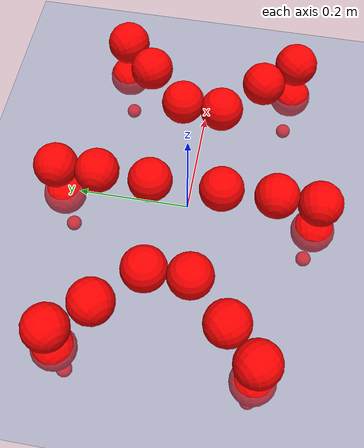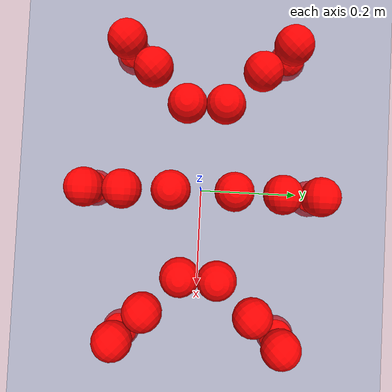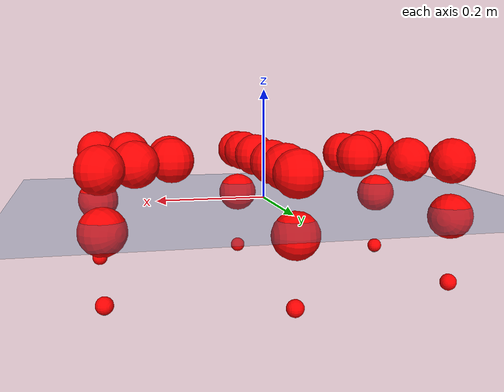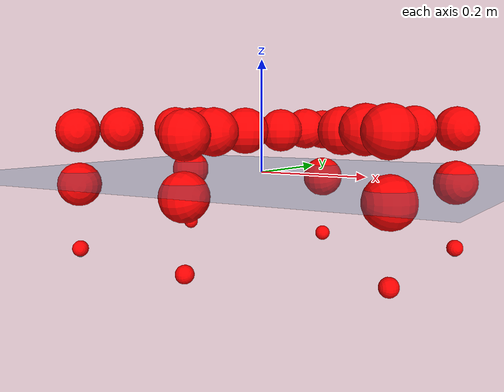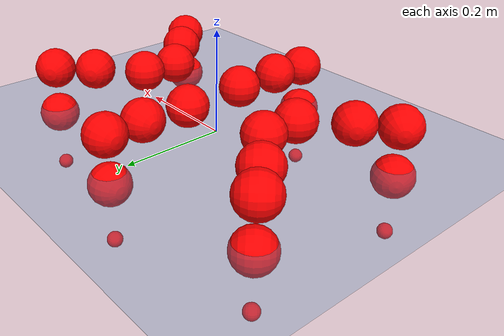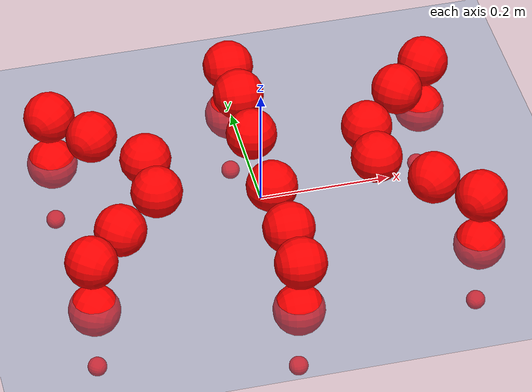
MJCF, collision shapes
<mujoco model="Golem">
  <compiler angle="radian" assetdir="assets" balanceinertia="true" inertiafromgeom="false"/>

  <option timestep="0.005" density="1.2" viscosity="2e-05"/>

  <size nkey="1"/>

  <visual>
    <quality shadowsize="8192"/>
    <map shadowclip="0.5"/>
  </visual>

  <default>
    <default class="/">
      <joint armature="0.01" damping="0.01" frictionloss="0.01"/>
      <geom contype="0" conaffinity="0" group="1" solref="-1000 -80"/>
      <site size="0.01 0.005 0.005" group="5"/>
      <general forcelimited="true" biastype="affine" gainprm="25" biasprm="0 -25 -0.5"/>
      <default class="visual">
        <geom type="mesh" group="2"/>
      </default>
      <default class="collision">
        <geom group="3"/>
      </default>
      <default class="foot">
        <geom size="0.01 0 0" condim="6" group="4" priority="1" solimp="0.015 1 0.01"/>
      </default>
      <default class="reward_collision_sphere">
        <geom group="5" rgba="1 0 0 1"/>
      </default>
    </default>
  </default>

  <asset>
    <texture type="skybox" colorspace="auto" name="//unnamed_texture_0" builtin="gradient" rgb1="0.95 0.95 0.95" rgb2="0.95 0.95 0.95" width="100" height="600"/>
    <texture type="2d" colorspace="auto" name="texplane" builtin="checker" rgb1="0.345 0.575 0.748" rgb2="0.345 0.575 0.748" markrgb="1 1 1" width="512" height="512"/>
    <material name="MatPlane" class="/" texture="texplane" texuniform="true" texrepeat="2 2" specular="0.9"/>
    <mesh name="body" class="/" file="body.stl" scale="0.001 0.001 0.001"/>
    <mesh name="coxa" class="/" file="coxa.stl" scale="0.001 0.001 0.001"/>
    <mesh name="femur" class="/" file="femur.stl" scale="0.001 0.001 0.001"/>
    <mesh name="tibia" class="/" file="tibia.stl" scale="0.001 0.001 0.001"/>
    <mesh name="tarsus" class="/" file="tarsus.stl" scale="0.001 0.001 0.001"/>
  </asset>

  <worldbody>
    <geom name="floor" class="/" size="100 100 0.125" type="plane" group="0" material="MatPlane"/>
    <light name="toplight_shadow" class="/" pos="0 0 5" dir="0.0990148 0.0990148 -0.990148" type="directional" ambient="0.04 0.04 0.04" diffuse="0.55 0.55 0.55" specular="0.12 0.12 0.12"/>
    <light name="toplight_fill" class="/" pos="0 0 5" dir="0.0990148 0.0990148 -0.990148" type="directional" castshadow="false" ambient="0.04 0.04 0.04" diffuse="0.3 0.3 0.3" specular="0.08 0.08 0.08"/>
    <body name="trunk" pos="0.00220061 0.00188938 0.00283381" quat="1 7.25362e-05 -0.000198669 -0.000150313">
      <inertial pos="-0.00185616 -0.00116379 -0.00234519" quat="0.999988 -0.00271676 -0.00312426 0.00275778" mass="3.79256" diaginertia="0.0156773 0.00206094 0.0198005"/>
      <joint name="//unnamed_joint_0" type="free"/>
      <geom name="//unnamed_geom_1" class="/" pos="0 0 0.0731502" quat="1 0 0 0" type="mesh" rgba="0.9 0.9 0.9 1" mesh="body"/>
      <site name="imu" class="/" pos="0.145967 -0.0141526 0.118155" size="0.0098839"/>
      <camera name="track" class="/" pos="0 -1.45296 0" quat="0.707107 0.707107 0 0" mode="trackcom"/>
      <camera name="ego_camera" class="/" pos="0.142443 0 0.114297" quat="-0.5 -0.5 0.5 0.5"/>
      <body name="coxa_RR" pos="-0.193585 -0.0591785 0.0744911" quat="0.38283 -0.000999325 0.000175932 -0.923818">
        <inertial pos="-0.000539418 -0.00117275 0.00159624" quat="0.999907 0.000909527 0.0129932 0.00416335" mass="0.200055" diaginertia="0.015885 0.00197868 0.0195737"/>
        <joint name="coxa_joint_RR" class="/" pos="0 0 0" axis="-0.000377262 -9.16754e-05 -1" stiffness="0.0085078" range="-3.08629 3.13769" armature="0.00994412" damping="0.00426704" frictionloss="0.0100355"/>
        <geom name="//unnamed_geom_2" class="/" type="mesh" rgba="0.2 0.2 0.2 1" mesh="coxa"/>
        <geom name="//unnamed_geom_3" class="reward_collision_sphere" size="0.0395356" pos="-0.0328715 0 0"/>
        <body name="femur_RR" pos="0.0659217 0.000566678 -0.000663137" quat="0.499664 -0.50016 0.499492 0.500683">
          <inertial pos="-0.00264489 -0.000110199 -0.000871128" quat="1 -0.000934295 0.000241527 -6.27565e-05" mass="0.196366" diaginertia="0.0160707 0.00206253 0.0198733"/>
          <joint name="femur_joint_RR" class="/" pos="0 0 0" axis="-0.0057703 -0.00179238 -0.999982" stiffness="0.00646537" range="-3.19622 3.19575" armature="0.00843419" damping="0" frictionloss="0.0100427"/>
          <geom name="//unnamed_geom_4" class="/" type="mesh" rgba="0.9 0.9 0.9 1" mesh="femur"/>
          <geom name="//unnamed_geom_5" class="reward_collision_sphere" size="0.0395356"/>
          <body name="tibia_RR" pos="0.00284865 -0.0774708 -3.67526e-05" quat="-0.000143359 1 6.17617e-05 0.000272509">
            <inertial pos="0.00259081 -0.000590156 0.000757305" quat="0.999903 0.0131336 0.00453332 0.00125819" mass="0.193266" diaginertia="0.0164424 0.00216052 0.0204166"/>
            <joint name="tibia_joint_RR" class="/" pos="0 0 0" axis="0.0119247 0.00761345 0.9999" range="-3.19231 3.12934" armature="0.00979556" damping="0.0223336" frictionloss="0.00979079"/>
            <geom name="//unnamed_geom_6" class="/" type="mesh" rgba="0.2 0.2 0.2 1" mesh="tibia"/>
            <geom name="//unnamed_geom_7" class="reward_collision_sphere" size="0.0395356"/>
            <body name="tarsus_RR" pos="0.0975126 -0.00155103 -0.000335096" quat="1 0.00013292 -0.00037024 0.000139706">
              <inertial pos="0.069378 0.000775189 -0.00240829" quat="0.489101 0.502257 0.501518 0.50695" mass="0.197811" diaginertia="0.0155572 0.00212899 0.0199093"/>
              <joint name="tarsus_joint_RR" class="/" pos="0 0 0" axis="0.00417526 0.00516822 0.999978" range="-3.11251 3.14864" armature="0.0108875" damping="0.0417427" frictionloss="0.0112359"/>
              <geom name="//unnamed_geom_8" class="/" type="mesh" rgba="0.9 0.9 0.9 1" mesh="tarsus"/>
              <geom name="foot_1" class="foot" size="0.0106709" pos="0.12272 0 0" quat="0 -0.707107 0 0.707107"/>
              <geom name="//unnamed_geom_10" class="reward_collision_sphere" size="0.0395356"/>
              <geom name="//unnamed_geom_11" class="reward_collision_sphere" size="0.0148258" pos="0.117789 0 0"/>
              <site name="foot_1" class="foot" pos="0.12272 0 0" quat="0 -0.707107 0 0.707107" size="0.0098839"/>
            </body>
          </body>
        </body>
      </body>
      <body name="coxa_RM" pos="0.000677197 -0.093821 0.0723413" quat="0.70714 7.23817e-06 -0.000338512 -0.707073">
        <inertial pos="0.000418118 0.00281571 0.00192686" quat="0.999991 0.00301621 9.57044e-05 0.00283554" mass="0.188953" diaginertia="0.0160213 0.00207648 0.0198326"/>
        <joint name="coxa_joint_RM" class="/" pos="0 0 0" axis="-0.00319742 -0.00765924 -0.999966" range="-3.15022 3.11047" armature="0.00999022" damping="0.0209674" frictionloss="0.00950031"/>
        <geom name="//unnamed_geom_12" class="/" type="mesh" rgba="0.2 0.2 0.2 1" mesh="coxa"/>
        <geom name="//unnamed_geom_13" class="reward_collision_sphere" size="0.0395356" pos="-0.0328715 0 0"/>
        <body name="femur_RM" pos="0.0630583 0.0024296 -2.42898e-05" quat="0.499983 -0.500015 0.499985 0.500016">
          <inertial pos="-0.00057368 -0.00299808 0.00264725" quat="0.99999 -0.00282144 -0.000283201 -0.00350075" mass="0.197497" diaginertia="0.015586 0.0019976 0.0195845"/>
          <joint name="femur_joint_RM" class="/" pos="0 0 0" axis="0.00402527 0.00160636 -0.999991" range="-3.12035 3.08453" armature="0.010287" damping="0" frictionloss="0.0103374"/>
          <geom name="//unnamed_geom_14" class="/" type="mesh" rgba="0.9 0.9 0.9 1" mesh="femur"/>
          <geom name="//unnamed_geom_15" class="reward_collision_sphere" size="0.0395356"/>
          <body name="tibia_RM" pos="0.00317161 -0.0749319 -0.000509787" quat="-3.72949e-06 1 -2.05117e-05 -7.54883e-06">
            <inertial pos="-0.00119065 -0.00162641 0.00205451" quat="0.999985 -0.00163898 0.00332569 0.00410873" mass="0.19169" diaginertia="0.0158762 0.00201426 0.0190817"/>
            <joint name="tibia_joint_RM" class="/" pos="0 0 0" axis="-0.000472206 0.00093433 0.999999" range="-3.16085 3.19258" armature="0.0112984" damping="0.0170584" frictionloss="0.0112788"/>
            <geom name="//unnamed_geom_16" class="/" type="mesh" rgba="0.2 0.2 0.2 1" mesh="tibia"/>
            <geom name="//unnamed_geom_17" class="reward_collision_sphere" size="0.0395356"/>
            <body name="tarsus_RM" pos="0.0935369 -0.000418973 0.00186809" quat="1 0.000186788 0.000460147 5.83556e-05">
              <inertial pos="0.0669759 -0.000639071 0.00020007" quat="0.497836 0.497913 0.502542 0.501691" mass="0.200297" diaginertia="0.0168186 0.00209409 0.0201395"/>
              <joint name="tarsus_joint_RM" class="/" pos="0 0 0" axis="-0.00339057 -0.00111086 0.999994" range="-3.13912 3.15621" armature="0.00887055" damping="0.0129768" frictionloss="0.00953364"/>
              <geom name="//unnamed_geom_18" class="/" type="mesh" rgba="0.9 0.9 0.9 1" mesh="tarsus"/>
              <geom name="foot_2" class="foot" size="0.00899458" pos="0.12272 0 0" quat="0 -0.707107 0 0.707107"/>
              <geom name="//unnamed_geom_20" class="reward_collision_sphere" size="0.0395356"/>
              <geom name="//unnamed_geom_21" class="reward_collision_sphere" size="0.0148258" pos="0.117789 0 0"/>
              <site name="foot_2" class="foot" pos="0.12272 0 0" quat="0 -0.707107 0 0.707107" size="0.0098839"/>
            </body>
          </body>
        </body>
      </body>
      <body name="coxa_RF" pos="0.193312 -0.0586015 0.0738747" quat="0.923908 0.000284686 -0.000188001 -0.382615">
        <inertial pos="0.00232291 8.30611e-05 -0.000325623" quat="0.999997 -0.00177851 0.000791585 -0.00141526" mass="0.19471" diaginertia="0.0161834 0.00204967 0.0191396"/>
        <joint name="coxa_joint_RF" class="/" pos="0 0 0" axis="-0.0066037 0.00109473 -0.999978" range="-3.19599 3.15236" armature="0.00845795" damping="0.015936" frictionloss="0.0103438"/>
        <geom name="//unnamed_geom_22" class="/" type="mesh" rgba="0.2 0.2 0.2 1" mesh="coxa"/>
        <geom name="//unnamed_geom_23" class="reward_collision_sphere" size="0.0395356" pos="-0.0328715 0 0"/>
        <body name="femur_RF" pos="0.0657547 0.000339705 0.0037004" quat="0.500018 -0.499678 0.499589 0.500714">
          <inertial pos="0.00135849 -0.000447355 -0.00247102" quat="0.999976 -0.00316049 -0.00476949 -0.00381218" mass="0.187659" diaginertia="0.0154092 0.00205695 0.0197551"/>
          <joint name="femur_joint_RF" class="/" pos="0 0 0" axis="0.00153607 -0.000360757 -0.999999" range="-3.09644 3.13339" armature="0.0112357" damping="0" frictionloss="0.0109024"/>
          <geom name="//unnamed_geom_24" class="/" type="mesh" rgba="0.9 0.9 0.9 1" mesh="femur"/>
          <geom name="//unnamed_geom_25" class="reward_collision_sphere" size="0.0395356"/>
          <body name="tibia_RF" pos="0.000956278 -0.0799769 0.00179504" quat="-8.04928e-05 1 -8.08532e-05 0.000139062">
            <inertial pos="0.0018687 0.00294948 -0.00125219" quat="0.999975 0.00645454 0.00281893 0.000825722" mass="0.195222" diaginertia="0.0160179 0.00196245 0.0202337"/>
            <joint name="tibia_joint_RF" class="/" pos="0 0 0" axis="-0.00176818 0.00147575 0.999997" range="-3.15703 3.12667" armature="0.01096" damping="0.000388924" frictionloss="0.00865816"/>
            <geom name="//unnamed_geom_26" class="/" type="mesh" rgba="0.2 0.2 0.2 1" mesh="tibia"/>
            <geom name="//unnamed_geom_27" class="reward_collision_sphere" size="0.0395356"/>
            <body name="tarsus_RF" pos="0.0975467 0.000919556 -0.000832395" quat="1 -0.000480155 -0.000610685 2.41998e-05">
              <inertial pos="0.0647588 -0.00144496 -0.000836817" quat="0.498906 0.499596 0.498313 0.503171" mass="0.18949" diaginertia="0.0163497 0.00202695 0.0198044"/>
              <joint name="tarsus_joint_RF" class="/" pos="0 0 0" axis="0.00566668 -0.0111933 0.999921" stiffness="0.0121289" range="-3.11037 3.15452" armature="0.0100042" damping="0.00191233" frictionloss="0.0100399"/>
              <geom name="//unnamed_geom_28" class="/" type="mesh" rgba="0.9 0.9 0.9 1" mesh="tarsus"/>
              <geom name="foot_3" class="foot" size="0.00916863" pos="0.12272 0 0" quat="0 -0.707107 0 0.707107"/>
              <geom name="//unnamed_geom_30" class="reward_collision_sphere" size="0.0395356"/>
              <geom name="//unnamed_geom_31" class="reward_collision_sphere" size="0.0148258" pos="0.117789 0 0"/>
              <site name="foot_3" class="foot" pos="0.12272 0 0" quat="0 -0.707107 0 0.707107" size="0.0098839"/>
            </body>
          </body>
        </body>
      </body>
      <body name="coxa_LR" pos="-0.194976 0.063092 0.0755235" quat="0.382003 0.000894789 -8.16639e-05 0.924161">
        <inertial pos="-0.00138489 -0.00130233 0.00254184" quat="0.999921 0.00567414 -0.0112074 0.00028821" mass="0.192045" diaginertia="0.0155137 0.00203172 0.0190336"/>
        <joint name="coxa_joint_LR" class="/" pos="0 0 0" axis="-0.00143891 -0.0154505 -0.99988" range="-3.18895 3.16712" armature="0.00899225" damping="0.0148629" frictionloss="0.0099897"/>
        <geom name="//unnamed_geom_32" class="/" type="mesh" rgba="0.2 0.2 0.2 1" mesh="coxa"/>
        <geom name="//unnamed_geom_33" class="reward_collision_sphere" size="0.0395356" pos="-0.0328715 0 0"/>
        <body name="femur_LR" pos="0.0664108 -0.00134428 -0.00182734" quat="0.499197 -0.500769 0.499389 0.500643">
          <inertial pos="0.00188714 0.000512975 0.000555357" quat="0.999973 -0.00403043 -0.0058887 0.00170559" mass="0.18662" diaginertia="0.0156149 0.0020222 0.0196968"/>
          <joint name="femur_joint_LR" class="/" pos="0 0 0" axis="-0.0105621 -0.0101687 0.999893" range="-3.1234 3.08855" armature="0.0111413" damping="0" frictionloss="0.0102187"/>
          <geom name="//unnamed_geom_34" class="/" type="mesh" rgba="0.9 0.9 0.9 1" mesh="femur"/>
          <geom name="//unnamed_geom_35" class="reward_collision_sphere" size="0.0395356"/>
          <body name="tibia_LR" pos="-0.00169571 -0.0798957 -0.00321621" quat="0.00134971 0.999999 0.000448351 -7.83574e-05">
            <inertial pos="0.000945408 -0.000940262 0.00267262" quat="0.9999 0.00921805 -0.000986138 0.0106904" mass="0.191097" diaginertia="0.0162154 0.00207064 0.0194385"/>
            <joint name="tibia_joint_LR" class="/" pos="0 0 0" axis="-8.31626e-05 -0.000359864 -1" range="-3.19026 3.19383" armature="0.0086117" damping="0.0126966" frictionloss="0.0112874"/>
            <geom name="//unnamed_geom_36" class="/" type="mesh" rgba="0.2 0.2 0.2 1" mesh="tibia"/>
            <geom name="//unnamed_geom_37" class="reward_collision_sphere" size="0.0395356"/>
            <body name="tarsus_LR" pos="0.096547 0.000933566 0.00249954" quat="0.999999 3.55436e-06 -0.000658636 0.000868274">
              <inertial pos="0.0676935 0.00066669 0.000635298" quat="0.495168 0.511643 0.499411 0.493577" mass="0.199407" diaginertia="0.0164003 0.00211406 0.0203878"/>
              <joint name="tarsus_joint_LR" class="/" pos="0 0 0" axis="-0.00250186 -0.00563696 -0.999981" range="-3.18184 3.13689" armature="0.00988431" damping="0.029744" frictionloss="0.00892811"/>
              <geom name="//unnamed_geom_38" class="/" type="mesh" rgba="0.9 0.9 0.9 1" mesh="tarsus"/>
              <geom name="foot_4" class="foot" size="0.00997633" pos="0.12272 0 0" quat="0.707107 0 -0.707107 0"/>
              <geom name="//unnamed_geom_40" class="reward_collision_sphere" size="0.0395356"/>
              <geom name="//unnamed_geom_41" class="reward_collision_sphere" size="0.0148258" pos="0.117789 0 0"/>
              <site name="foot_4" class="foot" pos="0.12272 0 0" quat="0.707107 0 -0.707107 0" size="0.0098839"/>
            </body>
          </body>
        </body>
      </body>
      <body name="coxa_LM" pos="-0.00101964 0.0973352 0.0704682" quat="0.707234 -0.00122568 -0.000373604 0.706979">
        <inertial pos="-0.00191274 -0.001534 -0.00261806" quat="0.999997 0.00140916 -0.000752485 -0.00210205" mass="0.189267" diaginertia="0.0151744 0.00196777 0.019724"/>
        <joint name="coxa_joint_LM" class="/" pos="0 0 0" axis="-0.00010995 0.00182869 -0.999998" range="-3.13959 3.12926" armature="0.0106529" damping="0.00785929" frictionloss="0.0084851"/>
        <geom name="//unnamed_geom_42" class="/" type="mesh" rgba="0.2 0.2 0.2 1" mesh="coxa"/>
        <geom name="//unnamed_geom_43" class="reward_collision_sphere" size="0.0395356" pos="-0.0328715 0 0"/>
        <body name="femur_LM" pos="0.0622716 -0.00154449 0.00177622" quat="0.500247 -0.5001 0.500004 0.499649">
          <inertial pos="0.00271853 0.00246142 0.00181306" quat="0.999999 -0.000457483 -0.000843036 -0.00108391" mass="0.192634" diaginertia="0.016294 0.00201118 0.0189565"/>
          <joint name="femur_joint_LM" class="/" pos="0 0 0" axis="0.00649655 -0.00214377 0.999977" stiffness="0.00418676" range="-3.15238 3.08703" armature="0.011257" damping="0" frictionloss="0.0112731"/>
          <geom name="//unnamed_geom_44" class="/" type="mesh" rgba="0.9 0.9 0.9 1" mesh="femur"/>
          <geom name="//unnamed_geom_45" class="reward_collision_sphere" size="0.0395356"/>
          <body name="tibia_LM" pos="0.00287019 -0.0748645 -0.000688543" quat="-0.000179534 1 0.000436052 0.000282774">
            <inertial pos="-0.00253426 -0.0014175 0.000874986" quat="0.999993 -0.00102696 0.00347204 -0.000696952" mass="0.192743" diaginertia="0.0156511 0.00202755 0.0188247"/>
            <joint name="tibia_joint_LM" class="/" pos="0 0 0" axis="0.00980634 -0.00747782 -0.999924" range="-3.13043 3.1005" armature="0.0108122" damping="0" frictionloss="0.00962099"/>
            <geom name="//unnamed_geom_46" class="/" type="mesh" rgba="0.2 0.2 0.2 1" mesh="tibia"/>
            <geom name="//unnamed_geom_47" class="reward_collision_sphere" size="0.0395356"/>
            <body name="tarsus_LM" pos="0.0980476 -0.00220087 0.00162393" quat="1 0.000275801 -2.89546e-05 -0.00083345">
              <inertial pos="0.0625369 -0.000226655 -0.00233783" quat="0.495749 0.498287 0.501379 0.504541" mass="0.193203" diaginertia="0.0154398 0.00190629 0.0182891"/>
              <joint name="tarsus_joint_LM" class="/" pos="0 0 0" axis="0.00127559 -0.00914887 -0.999957" stiffness="0.00439169" range="-3.11851 3.09793" armature="0.00872624" damping="0.0229913" frictionloss="0.00981773"/>
              <geom name="//unnamed_geom_48" class="/" type="mesh" rgba="0.9 0.9 0.9 1" mesh="tarsus"/>
              <geom name="foot_5" class="foot" size="0.00995994" pos="0.12272 0 0" quat="0.707107 0 -0.707107 0"/>
              <geom name="//unnamed_geom_50" class="reward_collision_sphere" size="0.0395356"/>
              <geom name="//unnamed_geom_51" class="reward_collision_sphere" size="0.0148258" pos="0.117789 0 0"/>
              <site name="foot_5" class="foot" pos="0.12272 0 0" quat="0.707107 0 -0.707107 0" size="0.0098839"/>
            </body>
          </body>
        </body>
      </body>
      <body name="coxa_LF" pos="0.196938 0.0602113 0.0743811" quat="0.924088 0.000397672 -0.000454819 0.382178">
        <inertial pos="0.00165468 -0.000782019 0.00216995" quat="0.999993 -0.00312607 -0.00207043 0.000740649" mass="0.195956" diaginertia="0.0152489 0.00206067 0.0192122"/>
        <joint name="coxa_joint_LF" class="/" pos="0 0 0" axis="0.0156316 -0.00833659 -0.999843" stiffness="0.00927132" range="-3.13821 3.14037" armature="0.009239" damping="0.00669378" frictionloss="0.00992304"/>
        <geom name="//unnamed_geom_52" class="/" type="mesh" rgba="0.2 0.2 0.2 1" mesh="coxa"/>
        <geom name="//unnamed_geom_53" class="reward_collision_sphere" size="0.0395356" pos="-0.0328715 0 0"/>
        <body name="femur_LF" pos="0.0662313 0.00345731 0.00182691" quat="0.499926 -0.500018 0.499992 0.500065">
          <inertial pos="0.00209156 -0.00217239 0.00141674" quat="0.999955 0.00320731 0.00864129 0.00245185" mass="0.187085" diaginertia="0.0155437 0.00202625 0.0194023"/>
          <joint name="femur_joint_LF" class="/" pos="0 0 0" axis="0.000339576 0.0120657 0.999927" range="-3.15026 3.15202" armature="0.0113926" damping="0.00917383" frictionloss="0.00939146"/>
          <geom name="//unnamed_geom_54" class="/" type="mesh" rgba="0.9 0.9 0.9 1" mesh="femur"/>
          <geom name="//unnamed_geom_55" class="reward_collision_sphere" size="0.0395356"/>
          <body name="tibia_LF" pos="0.00139996 -0.0815719 -0.000415906" quat="0.00138536 0.999999 0.00045883 9.84577e-05">
            <inertial pos="-7.57462e-05 0.00141439 -0.000494898" quat="0.999999 0.00136572 -0.000578573 -0.000820936" mass="0.19267" diaginertia="0.0159968 0.00200504 0.0195611"/>
            <joint name="tibia_joint_LF" class="/" pos="0 0 0" axis="0.0109729 -0.000404587 -0.99994" range="-3.18305 3.19479" armature="0.0090585" damping="0.00971651" frictionloss="0.0106626"/>
            <geom name="//unnamed_geom_56" class="/" type="mesh" rgba="0.2 0.2 0.2 1" mesh="tibia"/>
            <geom name="//unnamed_geom_57" class="reward_collision_sphere" size="0.0395356"/>
            <body name="tarsus_LF" pos="0.0965046 0.000873784 -0.00353836" quat="0.999999 0.000443134 -0.000721072 0.000858273">
              <inertial pos="0.0636741 0.00272904 0.00014801" quat="0.499567 0.498316 0.501661 0.50045" mass="0.186766" diaginertia="0.0152269 0.00194794 0.0195005"/>
              <joint name="tarsus_joint_LF" class="/" pos="0 0 0" axis="0.0155292 -0.00305019 -0.999875" stiffness="0.0285543" range="-3.17355 3.16884" armature="0.010079" damping="0.000163437" frictionloss="0.0104009"/>
              <geom name="//unnamed_geom_58" class="/" type="mesh" rgba="0.9 0.9 0.9 1" mesh="tarsus"/>
              <geom name="foot_6" class="foot" size="0.0104775" pos="0.12272 0 0" quat="0.707107 0 -0.707107 0"/>
              <geom name="//unnamed_geom_60" class="reward_collision_sphere" size="0.0395356"/>
              <geom name="//unnamed_geom_61" class="reward_collision_sphere" size="0.0148258" pos="0.117789 0 0"/>
              <site name="foot_6" class="foot" pos="0.12272 0 0" quat="0.707107 0 -0.707107 0" size="0.0098839"/>
            </body>
          </body>
        </body>
      </body>
    </body>
  </worldbody>

  <contact>
    <pair class="/" geom1="floor" geom2="foot_1" name="//unnamed_contact_0"/>
    <pair class="/" geom1="floor" geom2="foot_2" name="//unnamed_contact_1"/>
    <pair class="/" geom1="floor" geom2="foot_3" name="//unnamed_contact_2"/>
    <pair class="/" geom1="floor" geom2="foot_4" name="//unnamed_contact_3"/>
    <pair class="/" geom1="floor" geom2="foot_5" name="//unnamed_contact_4"/>
    <pair class="/" geom1="floor" geom2="foot_6" name="//unnamed_contact_5"/>
  </contact>

  <actuator>
    <general name="coxa_joint_RR" class="/" joint="coxa_joint_RR" forcerange="-7.85735 7.85735" gainprm="24.2952" biasprm="0 -24.2952 -0.541169"/>
    <general name="femur_joint_RR" class="/" joint="femur_joint_RR" forcerange="-6.48566 6.48566" gainprm="24.2952" biasprm="0 -24.2952 -0.541169"/>
    <general name="tibia_joint_RR" class="/" joint="tibia_joint_RR" forcerange="-6.87425 6.87425" gainprm="24.2952" biasprm="0 -24.2952 -0.541169"/>
    <general name="tarsus_joint_RR" class="/" joint="tarsus_joint_RR" forcerange="-6.44993 6.44993" gainprm="24.2952" biasprm="0 -24.2952 -0.541169"/>
    <general name="coxa_joint_RM" class="/" joint="coxa_joint_RM" forcerange="-7.25387 7.25387" gainprm="24.2952" biasprm="0 -24.2952 -0.541169"/>
    <general name="femur_joint_RM" class="/" joint="femur_joint_RM" forcerange="-6.94348 6.94348" gainprm="24.2952" biasprm="0 -24.2952 -0.541169"/>
    <general name="tibia_joint_RM" class="/" joint="tibia_joint_RM" forcerange="-7.01297 7.01297" gainprm="24.2952" biasprm="0 -24.2952 -0.541169"/>
    <general name="tarsus_joint_RM" class="/" joint="tarsus_joint_RM" forcerange="-6.82468 6.82468" gainprm="24.2952" biasprm="0 -24.2952 -0.541169"/>
    <general name="coxa_joint_RF" class="/" joint="coxa_joint_RF" forcerange="-7.49359 7.49359" gainprm="24.2952" biasprm="0 -24.2952 -0.541169"/>
    <general name="femur_joint_RF" class="/" joint="femur_joint_RF" forcerange="-7.41553 7.41553" gainprm="24.2952" biasprm="0 -24.2952 -0.541169"/>
    <general name="tibia_joint_RF" class="/" joint="tibia_joint_RF" forcerange="-7.94567 7.94567" gainprm="24.2952" biasprm="0 -24.2952 -0.541169"/>
    <general name="tarsus_joint_RF" class="/" joint="tarsus_joint_RF" forcerange="-7.4304 7.4304" gainprm="24.2952" biasprm="0 -24.2952 -0.541169"/>
    <general name="coxa_joint_LR" class="/" joint="coxa_joint_LR" forcerange="-6.58589 6.58589" gainprm="24.2952" biasprm="0 -24.2952 -0.541169"/>
    <general name="femur_joint_LR" class="/" joint="femur_joint_LR" forcerange="-7.78694 7.78694" gainprm="24.2952" biasprm="0 -24.2952 -0.541169"/>
    <general name="tibia_joint_LR" class="/" joint="tibia_joint_LR" forcerange="-7.9831 7.9831" gainprm="24.2952" biasprm="0 -24.2952 -0.541169"/>
    <general name="tarsus_joint_LR" class="/" joint="tarsus_joint_LR" forcerange="-7.14406 7.14406" gainprm="24.2952" biasprm="0 -24.2952 -0.541169"/>
    <general name="coxa_joint_LM" class="/" joint="coxa_joint_LM" forcerange="-7.9258 7.9258" gainprm="24.2952" biasprm="0 -24.2952 -0.541169"/>
    <general name="femur_joint_LM" class="/" joint="femur_joint_LM" forcerange="-7.26222 7.26222" gainprm="24.2952" biasprm="0 -24.2952 -0.541169"/>
    <general name="tibia_joint_LM" class="/" joint="tibia_joint_LM" forcerange="-6.78243 6.78243" gainprm="24.2952" biasprm="0 -24.2952 -0.541169"/>
    <general name="tarsus_joint_LM" class="/" joint="tarsus_joint_LM" forcerange="-6.46732 6.46732" gainprm="24.2952" biasprm="0 -24.2952 -0.541169"/>
    <general name="coxa_joint_LF" class="/" joint="coxa_joint_LF" forcerange="-7.73341 7.73341" gainprm="24.2952" biasprm="0 -24.2952 -0.541169"/>
    <general name="femur_joint_LF" class="/" joint="femur_joint_LF" forcerange="-6.62075 6.62075" gainprm="24.2952" biasprm="0 -24.2952 -0.541169"/>
    <general name="tibia_joint_LF" class="/" joint="tibia_joint_LF" forcerange="-7.10644 7.10644" gainprm="24.2952" biasprm="0 -24.2952 -0.541169"/>
    <general name="tarsus_joint_LF" class="/" joint="tarsus_joint_LF" forcerange="-7.16871 7.16871" gainprm="24.2952" biasprm="0 -24.2952 -0.541169"/>
  </actuator>

  <sensor>
    <gyro site="imu" name="imu_angular_velocity"/>
    <velocimeter site="imu" name="imu_linear_velocity"/>
    <framelinvel objtype="site" objname="foot_1" name="foot_1_global_linear_velocity"/>
    <framelinvel objtype="site" objname="foot_2" name="foot_2_global_linear_velocity"/>
    <framelinvel objtype="site" objname="foot_3" name="foot_3_global_linear_velocity"/>
    <framelinvel objtype="site" objname="foot_4" name="foot_4_global_linear_velocity"/>
    <framelinvel objtype="site" objname="foot_5" name="foot_5_global_linear_velocity"/>
    <framelinvel objtype="site" objname="foot_6" name="foot_6_global_linear_velocity"/>
  </sensor>

  <keyframe>
    <key name="home" qpos="0 0 0.1457 1 0 0 0 0 0 0 0 0 0 0 0 0 0 0 0 0 0 0 0 0 0 0 0 0 0 0 0"/>
  </keyframe>
</mujoco>
